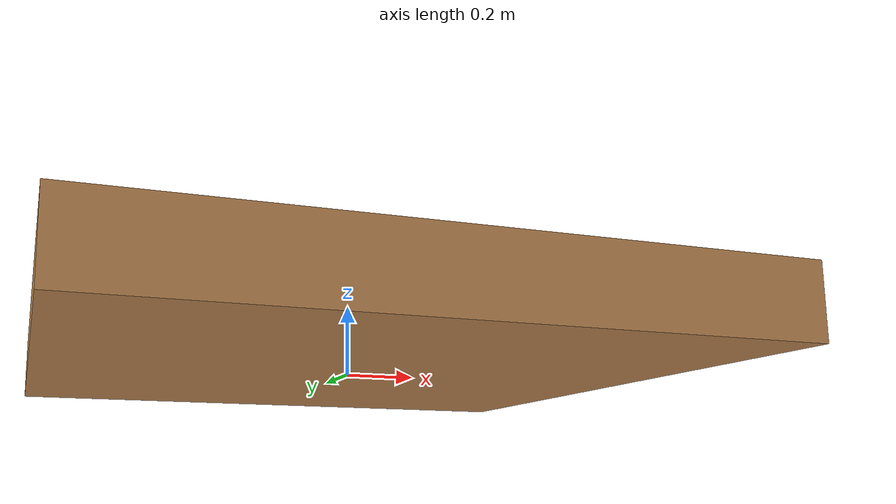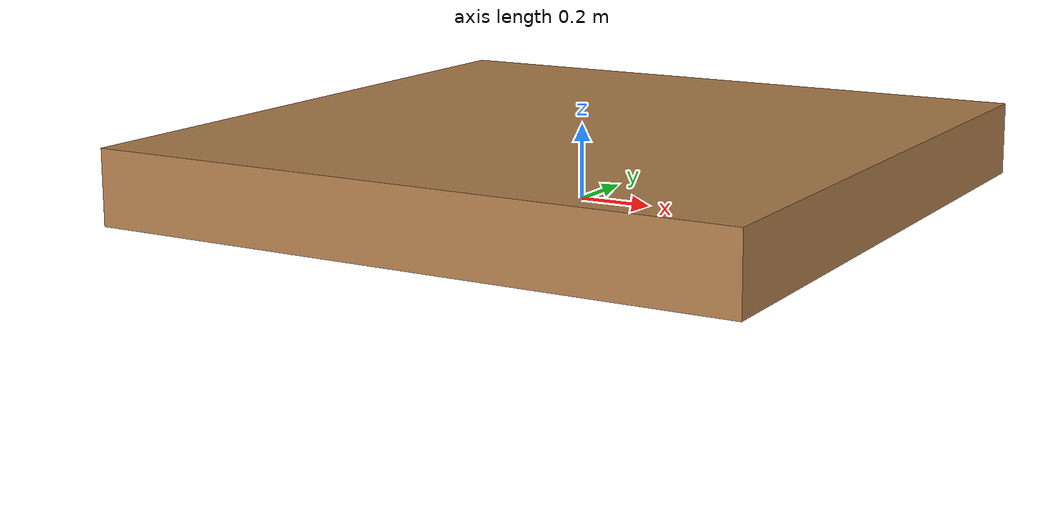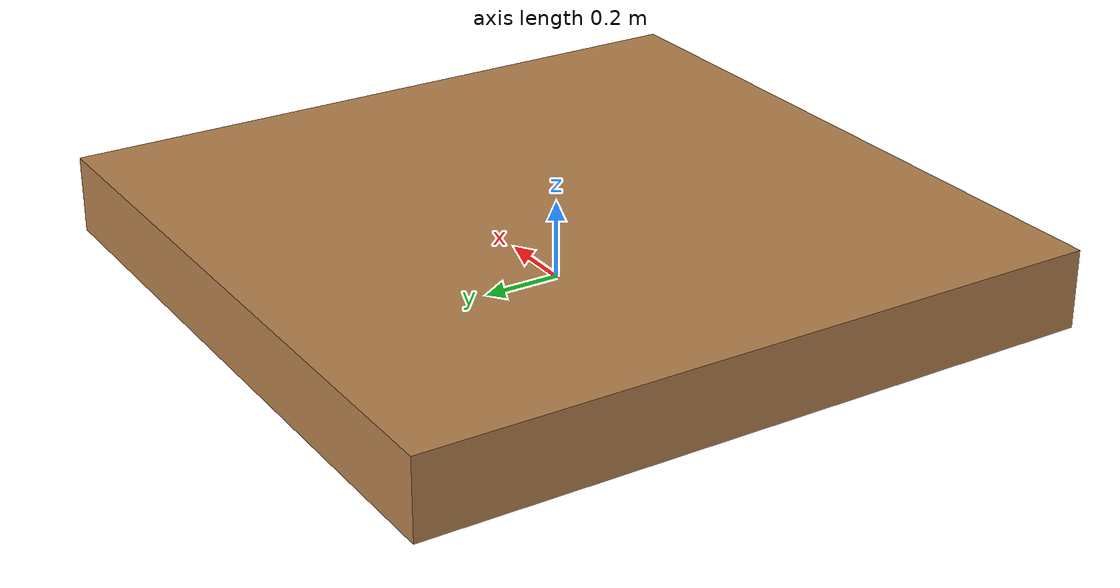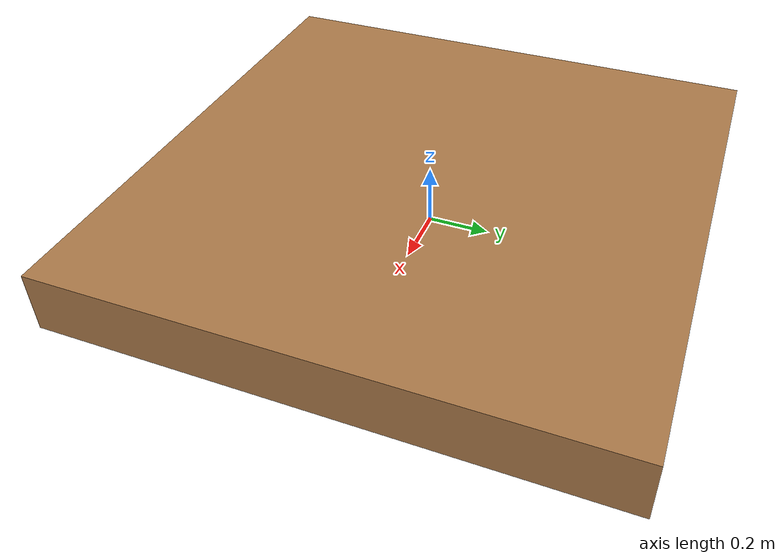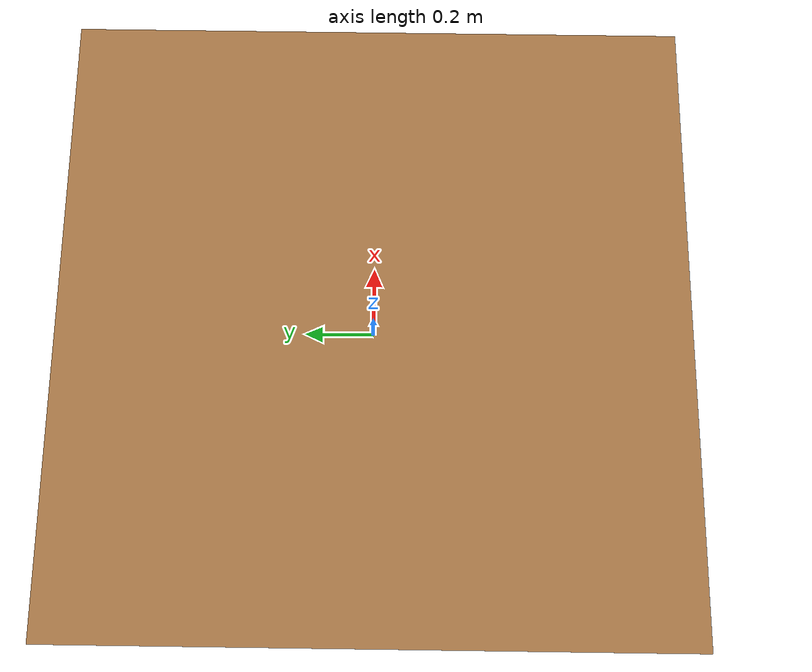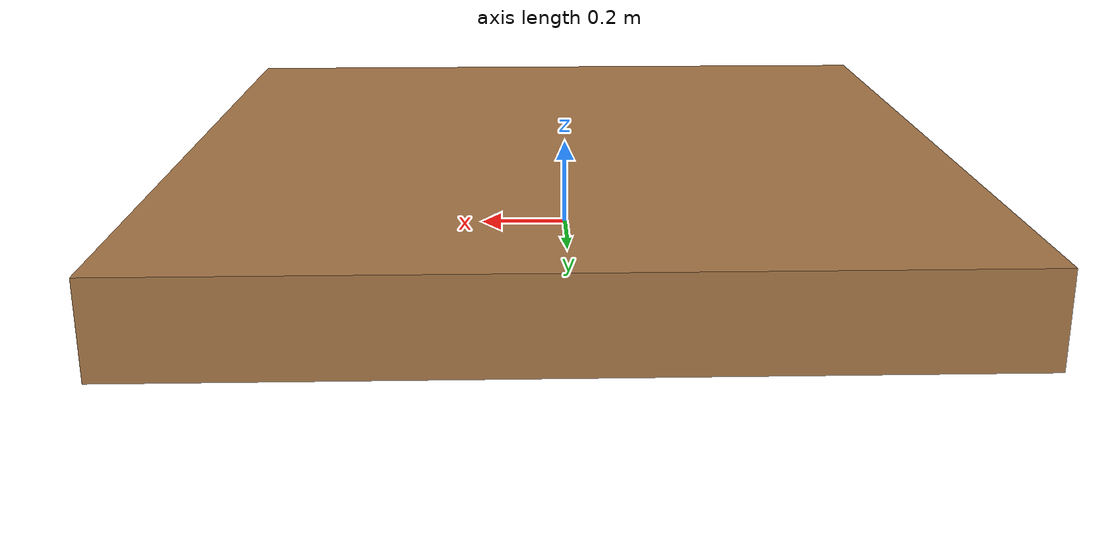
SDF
<?xml version='1.0'?>
<sdf version='1.6'>
  <model name='track_platform'>
    <static>1</static>
    <pose frame=''>0 0 0 0 -0 0</pose>
    <link name='Floor'>
      <collision name='Floor_Collision'>
        <geometry>
          <box>
            <size>1.76 1.75 0.2</size>
          </box>
        </geometry>
        <pose frame=''>0 0 0.1 0 -0 0</pose>
      </collision>
      <visual name='Floor_Visual'>
        <pose frame=''>0 0 0.1 0 -0 0</pose>
        <geometry>
          <box>
            <size>1.76 1.75 0.2</size>
          </box>
        </geometry>
        <material>
          <script>
            <uri>file://media/materials/scripts/gazebo.material</uri>
            <name>Gazebo/Wood</name>
          </script>
          <ambient>1 0.764706 0.305882 1</ambient>
        </material>
      </visual>
      <pose frame=''>0 0 0 0 -0 1.5708</pose>
    </link>
  </model>
</sdf>
